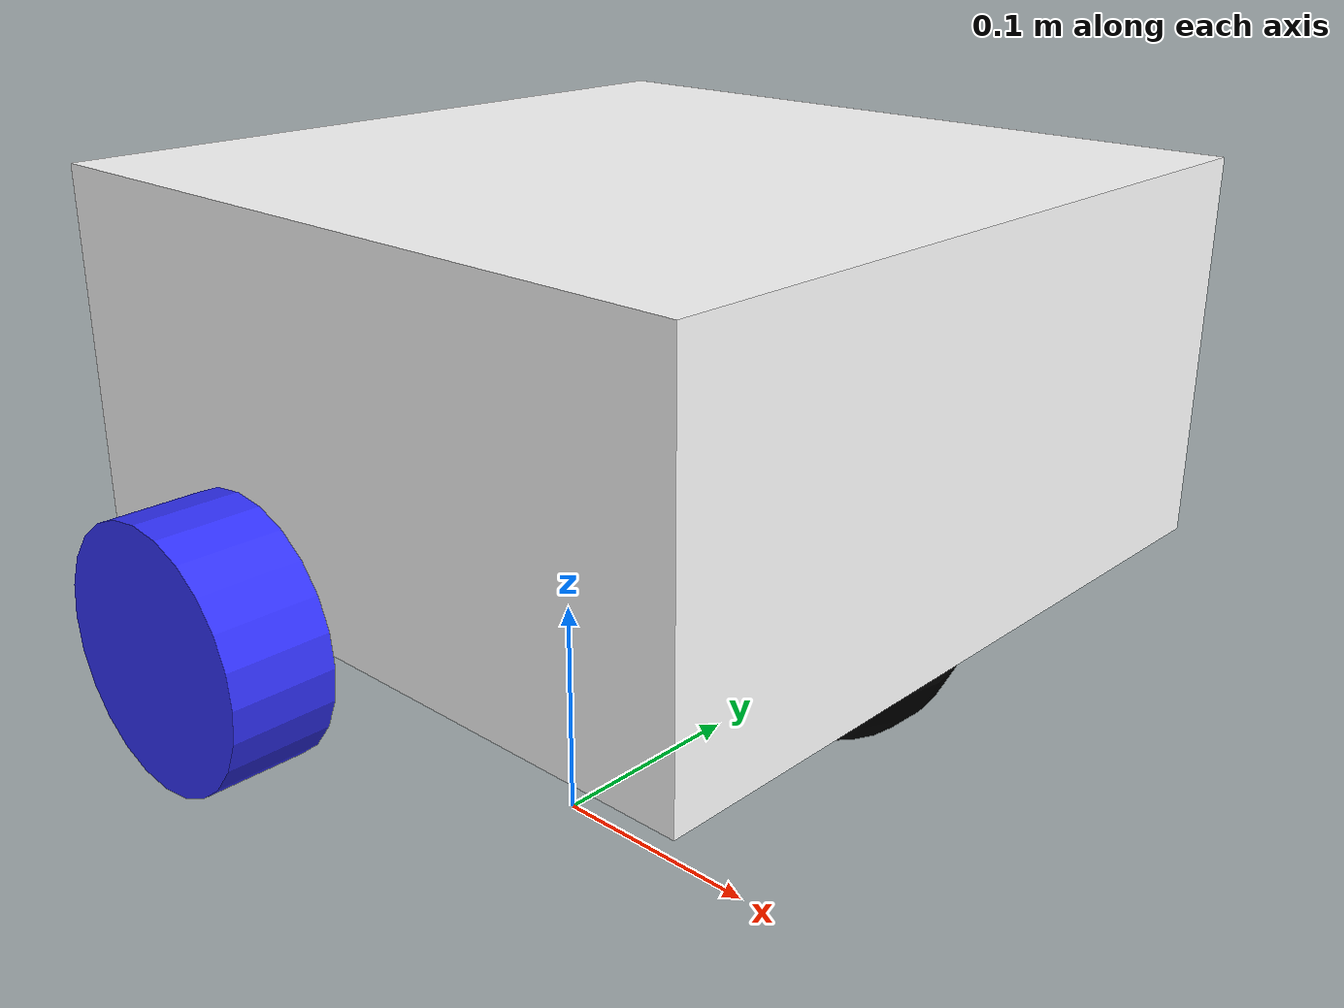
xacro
<?xml version="1.0"?>
<robot xmlns:xacro="http://www.ros.org/wiki/xacro">

    <xacro:include filename="robot_colors.xacro"/>
    <xacro:include filename="inertial_macros.xacro" />

    <!-- BASE LINK -->

    <link name="base_link">

    </link>

    <!-- CHASSIS LINK -->

    <joint name="chassis_joint" type="fixed">
        <parent link="base_link"/>
        <child link="chassis"/>
        <origin xyz="-0.1 0 0.15"/>
    </joint>

    <link name="chassis">
        <visual>
            <origin xyz="0.15 0 0.075" rpy="0 0 0"/>
            <geometry>
                <box size="0.3 0.3 0.15"/>
            </geometry>
            <material name="white"/>
        </visual>
        <collision>
            <origin xyz="0.15 0 0.075" rpy="0 0 0"/>
            <geometry>
                <box size="0.3 0.3 0.15"/>
            </geometry>
        </collision>
        <xacro:inertial_box mass="0.5" x="0.3" y="0.3" z="0.15">
            <origin xyz="0.15 0 0.075" rpy="0 0 0"/>
        </xacro:inertial_box>
    </link>

    <!-- LEFT WHEEL -->

    <joint name="left_wheel_joint" type="continuous">
        <parent link="base_link"/>
        <child link="left_wheel"/>
        <origin xyz="0 0.175 0.15" rpy="-${pi/2} 0 0"/>
        <axis xyz="0 0 1"/>
    </joint>

    <link name="left_wheel">
        <visual>
            <geometry>
                <cylinder length="0.04" radius="0.05" />
            </geometry>
            <material name="blue"/>
        </visual>
        <collision>
            <geometry>
                <cylinder length="0.04" radius="0.05" />
            </geometry>
        </collision>
        <xacro:inertial_cylinder mass="0.1" length="0.05" radius="0.05">
            <origin xyz="0 0 0" rpy="0 0 0"/>
        </xacro:inertial_cylinder>
    </link>

    <!-- RIGHT WHEEL -->

    <joint name="right_wheel_joint" type="continuous">
        <parent link="base_link"/>
        <child link="right_wheel"/>
        <origin xyz="0 -0.175 0.15" rpy="${pi/2} 0 0"/>
        <axis xyz="0 0 -1"/>
    </joint>

    <link name="right_wheel">
        <visual>
            <geometry>
                <cylinder length="0.04" radius="0.05" />
            </geometry>
            <material name="blue"/>
        </visual>
        <collision>
            <geometry>
                <cylinder length="0.04" radius="0.05" />
            </geometry>
        </collision>
        <xacro:inertial_cylinder mass="0.1" length="0.05" radius="0.05">
            <origin xyz="0 0 0" rpy="0 0 0"/>
        </xacro:inertial_cylinder>
    </link>

    <!-- CASTER WHEEL -->

    <joint name="caster_wheel_joint" type="fixed">
        <parent link="chassis"/>
        <child link="caster_wheel"/>
        <origin xyz="0.24 0 0" rpy="0 0 0"/>
    </joint>

    <link name="caster_wheel">
        <visual>
            <geometry>
                <sphere radius="0.05" />
            </geometry>
            <material name="black"/>
        </visual>
        <collision>
            <geometry>
                <sphere radius="0.05" />
            </geometry>
        </collision>
        <xacro:inertial_sphere mass="0.1" radius="0.05">
            <origin xyz="0 0 0" rpy="0 0 0"/>
        </xacro:inertial_sphere>
    </link>

    <gazebo reference="caster_wheel">
        <material>Gazebo/Black</material>
        <mu1 value="0.000"/>
        <mu2 value="0.000"/>
    </gazebo>

</robot>

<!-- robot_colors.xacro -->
<robot xmlns:xacro="http://www.ros.org/wiki/xacro">

    <material name="white">
        <color rgba="1 1 1 1"/>
    </material>

    <material name="orange">
        <color rgba="1 0.3 0.1 1"/>
    </material>

    <material name="blue">
        <color rgba="0.2 0.2 1 1"/>
    </material>

    <material name="black">
        <color rgba="0 0 0 1"/>
    </material>

</robot>
